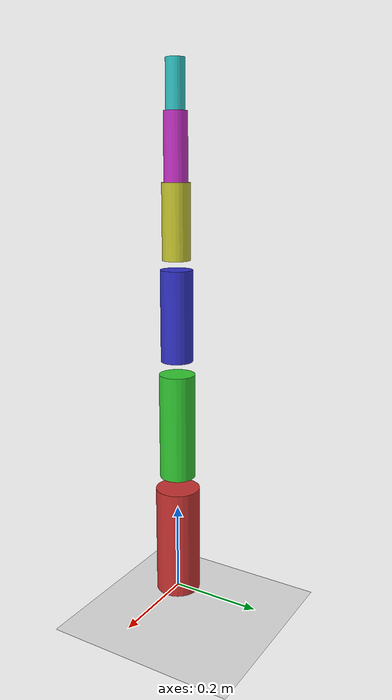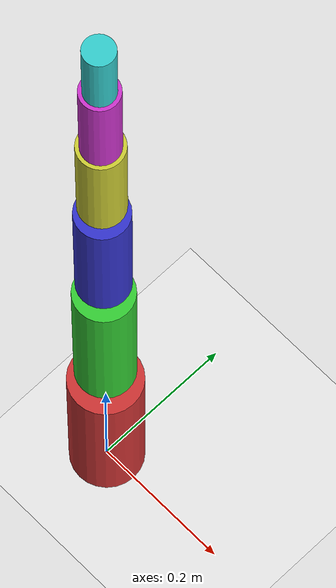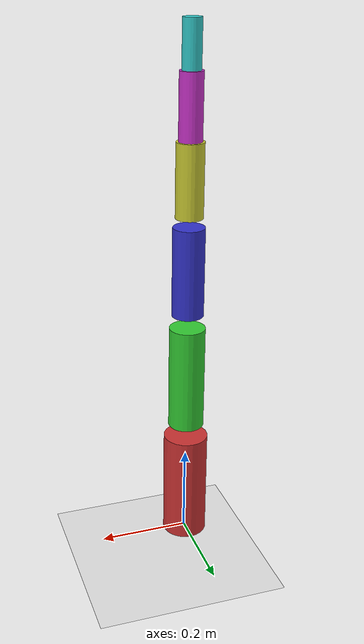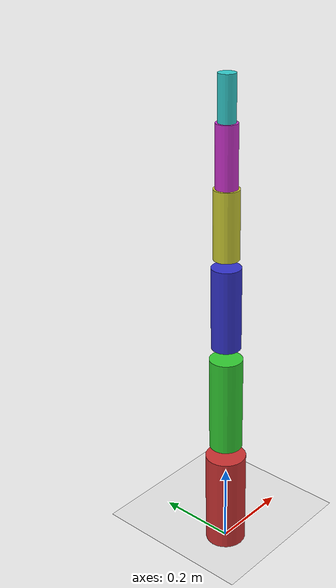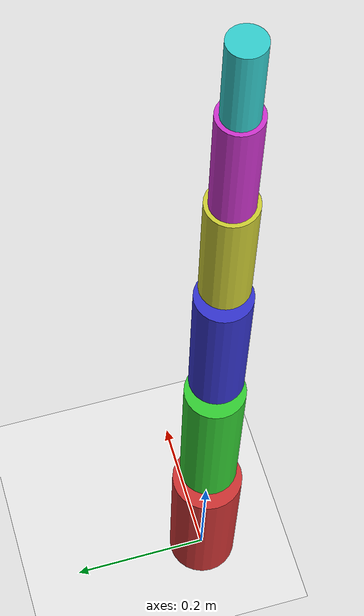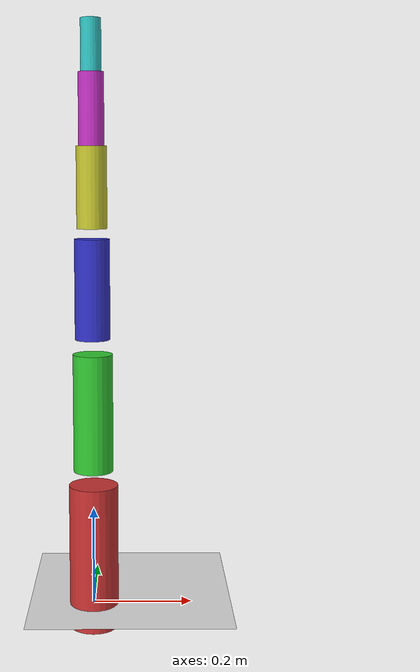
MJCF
<mujoco model="arm_6dof">
  <option timestep="0.002" gravity="0 0 -9.81"/>

  <worldbody>
    <light diffuse=".5 .5 .5" pos="0 0 3" dir="0 0 -1"/>
    <geom type="plane" size="2 2 0.1" rgba=".9 .9 .9 1"/>

    <body name="link1" pos="0 0 0.1">
      <joint name="joint1" type="hinge" axis="0 0 1"
             range="-3.14 3.14"/>
      <geom type="cylinder" size="0.05 0.15" rgba=".8 .2 .2 1"/>

      <body name="link2" pos="0 0 0.3">
        <joint name="joint2" type="hinge" axis="0 1 0"
               range="-1.57 1.57"/>
        <geom type="cylinder" size="0.04 0.12" rgba=".2 .8 .2 1"/>

        <body name="link3" pos="0 0 0.25">
          <joint name="joint3" type="hinge" axis="0 1 0"
                 range="-1.57 1.57"/>
          <geom type="cylinder" size="0.035 0.1" rgba=".2 .2 .8 1"/>

          <body name="link4" pos="0 0 0.2">
            <joint name="joint4" type="hinge" axis="0 0 1"
                   range="-3.14 3.14"/>
            <geom type="cylinder" size="0.03 0.08" rgba=".8 .8 .2 1"/>

            <body name="link5" pos="0 0 0.15">
              <joint name="joint5" type="hinge" axis="0 1 0"
                     range="-1.57 1.57"/>
              <geom type="cylinder" size="0.025 0.07" rgba=".8 .2 .8 1"/>

              <body name="link6" pos="0 0 0.12">
                <joint name="joint6" type="hinge" axis="0 0 1"
                       range="-3.14 3.14"/>
                <geom type="cylinder" size="0.02 0.05" rgba=".2 .8 .8 1"/>
              </body>
            </body>
          </body>
        </body>
      </body>
    </body>
  </worldbody>

  <actuator>
    <motor joint="joint1" gear="100" ctrlrange="-5 5"/>
    <motor joint="joint2" gear="80"  ctrlrange="-5 5"/>
    <motor joint="joint3" gear="60"  ctrlrange="-5 5"/>
    <motor joint="joint4" gear="50"  ctrlrange="-5 5"/>
    <motor joint="joint5" gear="40"  ctrlrange="-5 5"/>
    <motor joint="joint6" gear="30"  ctrlrange="-5 5"/>
  </actuator>
</mujoco>
